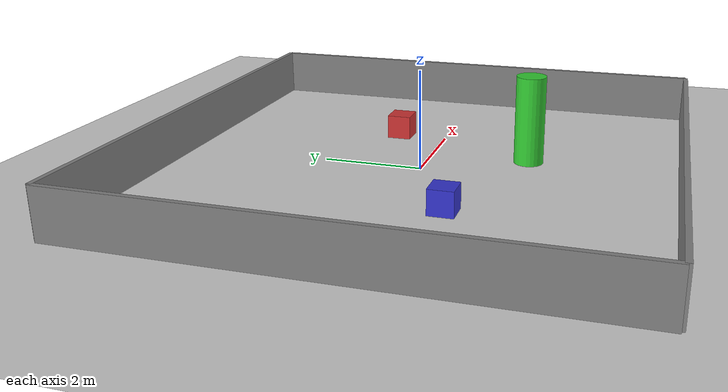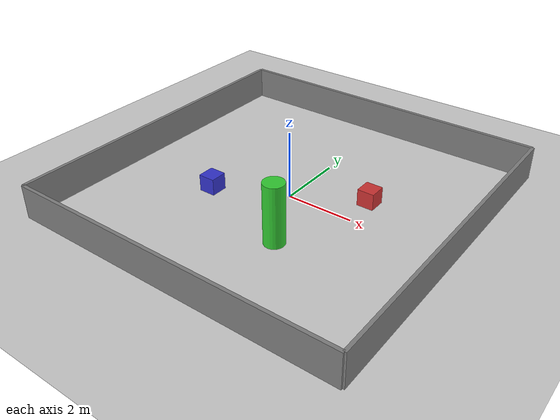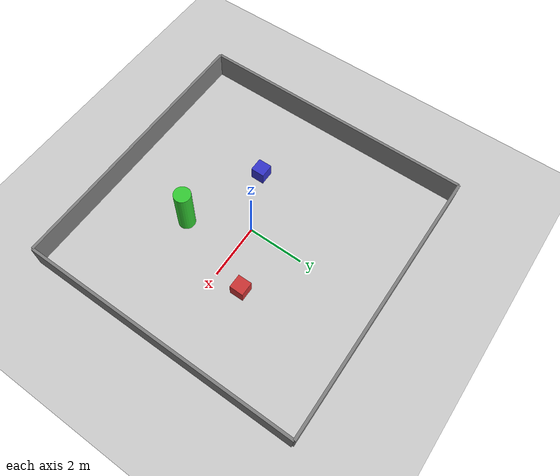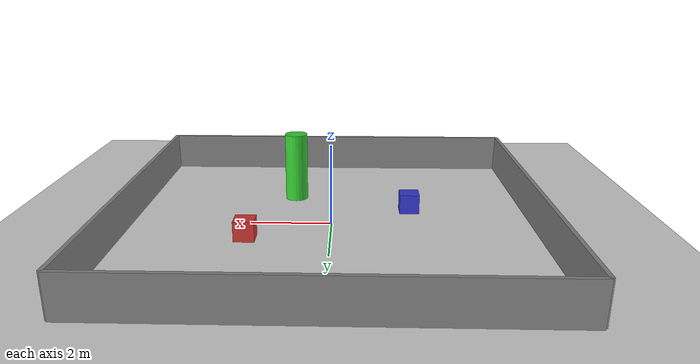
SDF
<?xml version="1.0"?>
<sdf version="1.9">
  <world name="empty">
    <physics name="1ms" type="ignored">
      <max_step_size>0.004</max_step_size>
      <real_time_factor>1.0</real_time_factor>
    </physics>
    <plugin filename="gz-sim-physics-system" name="gz::sim::systems::Physics"/>
    <plugin filename="gz-sim-scene-broadcaster-system" name="gz::sim::systems::SceneBroadcaster"/>
    <plugin filename="gz-sim-user-commands-system" name="gz::sim::systems::UserCommands"/>
    <plugin filename="gz-sim-imu-system" name="gz::sim::systems::Imu"/>
    <plugin filename="gz-sim-sensors-system" name="gz::sim::systems::Sensors">
      <render_engine>ogre2</render_engine>
    </plugin>
    <light type="directional" name="sun">
      <cast_shadows>true</cast_shadows>
      <pose>0 0 10 0 0 0</pose>
      <diffuse>0.8 0.8 0.8 1</diffuse>
      <specular>0.2 0.2 0.2 1</specular>
      <direction>-0.5 0.1 -0.9</direction>
    </light>
    <model name="ground_plane">
      <static>true</static>
      <link name="link">
        <collision name="collision">
          <geometry><plane><normal>0 0 1</normal></plane></geometry>
          <surface><friction><ode><mu>1.0</mu><mu2>1.0</mu2></ode></friction></surface>
        </collision>
        <visual name="visual">
          <geometry><plane><normal>0 0 1</normal><size>20 20</size></plane></geometry>
          <material><ambient>0.8 0.8 0.8 1</ambient><diffuse>0.8 0.8 0.8 1</diffuse></material>
        </visual>
      </link>
    </model>
    <model name="wall_north">
      <static>true</static><pose>0 5 0.5 0 0 0</pose>
      <link name="link">
        <collision name="col"><geometry><box><size>10 0.1 1</size></box></geometry></collision>
        <visual name="vis"><geometry><box><size>10 0.1 1</size></box></geometry>
          <material><ambient>0.5 0.5 0.5 1</ambient></material></visual>
      </link>
    </model>
    <model name="wall_south">
      <static>true</static><pose>0 -5 0.5 0 0 0</pose>
      <link name="link">
        <collision name="col"><geometry><box><size>10 0.1 1</size></box></geometry></collision>
        <visual name="vis"><geometry><box><size>10 0.1 1</size></box></geometry>
          <material><ambient>0.5 0.5 0.5 1</ambient></material></visual>
      </link>
    </model>
    <model name="wall_east">
      <static>true</static><pose>5 0 0.5 0 0 0</pose>
      <link name="link">
        <collision name="col"><geometry><box><size>0.1 10 1</size></box></geometry></collision>
        <visual name="vis"><geometry><box><size>0.1 10 1</size></box></geometry>
          <material><ambient>0.5 0.5 0.5 1</ambient></material></visual>
      </link>
    </model>
    <model name="wall_west">
      <static>true</static><pose>-5 0 0.5 0 0 0</pose>
      <link name="link">
        <collision name="col"><geometry><box><size>0.1 10 1</size></box></geometry></collision>
        <visual name="vis"><geometry><box><size>0.1 10 1</size></box></geometry>
          <material><ambient>0.5 0.5 0.5 1</ambient></material></visual>
      </link>
    </model>
    <model name="obstacle_1">
      <static>true</static><pose>2 1 0.25 0 0 0</pose>
      <link name="link">
        <collision name="col"><geometry><box><size>0.5 0.5 0.5</size></box></geometry></collision>
        <visual name="vis"><geometry><box><size>0.5 0.5 0.5</size></box></geometry>
          <material><ambient>0.8 0.2 0.2 1</ambient></material></visual>
      </link>
    </model>
    <model name="obstacle_2">
      <static>true</static><pose>-2 -1 0.25 0 0 0</pose>
      <link name="link">
        <collision name="col"><geometry><box><size>0.5 0.5 0.5</size></box></geometry></collision>
        <visual name="vis"><geometry><box><size>0.5 0.5 0.5</size></box></geometry>
          <material><ambient>0.2 0.2 0.8 1</ambient></material></visual>
      </link>
    </model>
    <model name="person_obstacle">
      <static>true</static><pose>1 -2 0.9 0 0 0</pose>
      <link name="link">
        <collision name="col"><geometry><cylinder><radius>0.3</radius><length>1.8</length></cylinder></geometry></collision>
        <visual name="vis"><geometry><cylinder><radius>0.3</radius><length>1.8</length></cylinder></geometry>
          <material><ambient>0.2 0.8 0.2 1</ambient></material></visual>
      </link>
    </model>
  </world>
</sdf>
